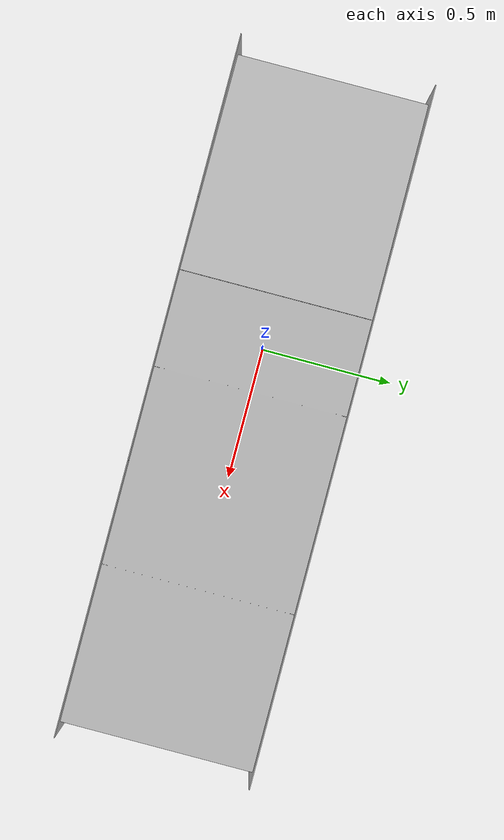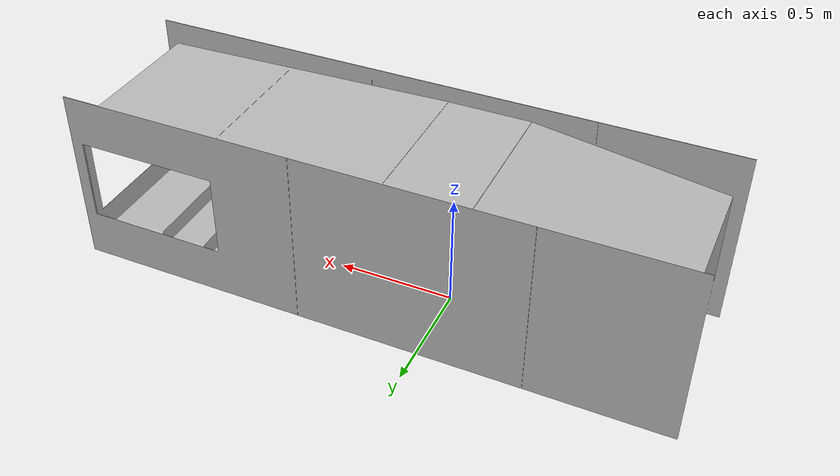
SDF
<?xml version="1.0"?>
<sdf version="1.4">
  <world name="default">
    <light name='sun' type='directional'>
      <cast_shadows>1</cast_shadows>
      <pose>0 0 10 0 -0 0</pose>
      <diffuse>0.8 0.8 0.8 1</diffuse>
      <specular>0.2 0.2 0.2 1</specular>
      <attenuation>
        <range>1000</range>
        <constant>0.9</constant>
        <linear>0.01</linear>
        <quadratic>0.001</quadratic>
      </attenuation>
      <direction>-0.5 0.1 -0.9</direction>
    </light>
    <model name="wingbay">
      <static>1</static>
      <link name="mesh_link">
        <pose>0 0 0 0 0 0</pose>

        <collision name="mesh_collision">
          <geometry>
    	    <mesh>
	      <uri>model://coverage/worlds/wingbay.stl</uri>
	      <scale>1.0 1.0 1.0</scale>
	    </mesh>

          </geometry>

        </collision>

        <visual name="mesh_visual">
          <geometry>
    	    <mesh>
	      <uri>model://coverage/worlds/wingbay.stl</uri>
	      <scale>1.0 1.0 1.0</scale>
	    </mesh>
          </geometry>
        </visual>
      </link>
    </model>

    <plugin filename="libdistance_ray_trace.so" name="ray_tracer"/>
  </world>
</sdf>
